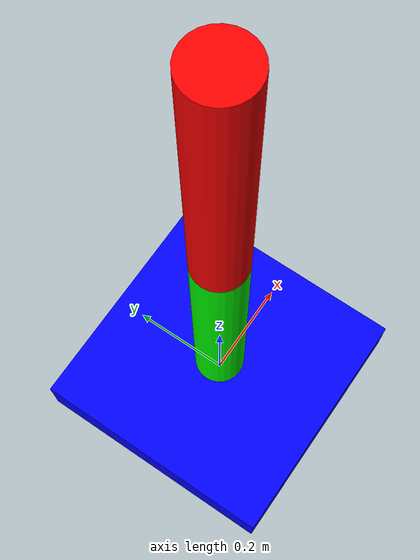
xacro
<?xml version="1.0"?>
<robot xmlns:xacro="http://www.ros.org/wiki/xacro" name="two_joint_robot">

  <!-- Robot description -->
  <link name="base_link">
    <visual>
      <geometry>
        <box size="0.5 0.5 0.1" />
      </geometry>
      <origin xyz="0 0 0" />
      <material name="blue">
        <color rgba="0 0 1 1"/>
      </material>
    </visual>
  </link>

  <link name="link_1">
    <visual>
      <geometry>
        <cylinder length="0.5" radius="0.05"/>
      </geometry>
      <origin xyz="0 0 0.25" />
      <material name="green">
        <color rgba="0 1 0 1"/>
      </material>
    </visual>
  </link>

  <link name="link_2">
    <visual>
      <geometry>
        <cylinder length="0.5" radius="0.05"/>
      </geometry>
      <origin xyz="0 0 0.25" />
      <material name="red">
        <color rgba="1 0 0 1"/>
      </material>
    </visual>
  </link>

  <!-- Joint 1: base_link to link_1 -->
  <joint name="joint_1" type="revolute">
    <parent link="base_link"/>
    <child link="link_1"/>
    <origin xyz="0 0 0.05" rpy="0 0 0"/>
    <axis xyz="0 0 1"/>
    <limit lower="-1.57" upper="1.57" effort="10" velocity="1.0"/>
  </joint>

  <!-- Joint 2: link_1 to link_2 -->
  <joint name="joint_2" type="revolute">
    <parent link="link_1"/>
    <child link="link_2"/>
    <origin xyz="0 0 0.5" rpy="0 0 0"/>
    <axis xyz="0 1 0"/>
    <limit lower="-1.57" upper="1.57" effort="10" velocity="1.0"/>
  </joint>

</robot>
